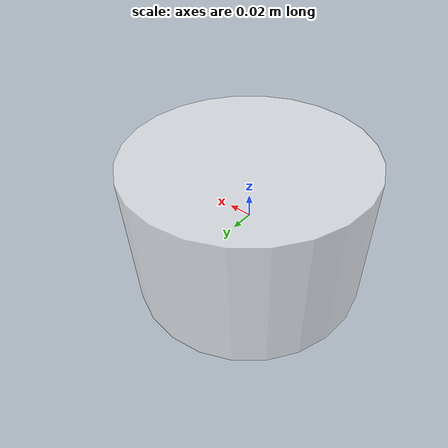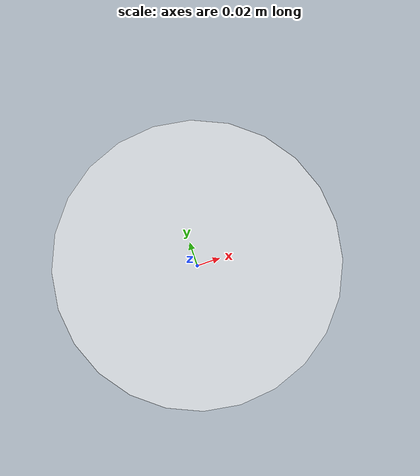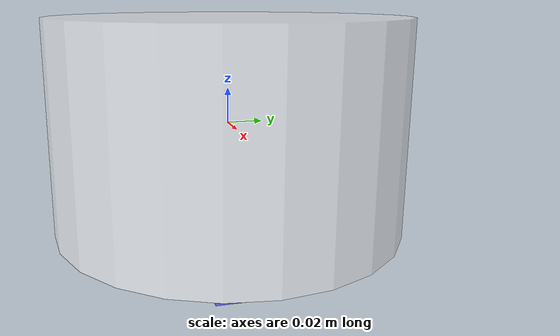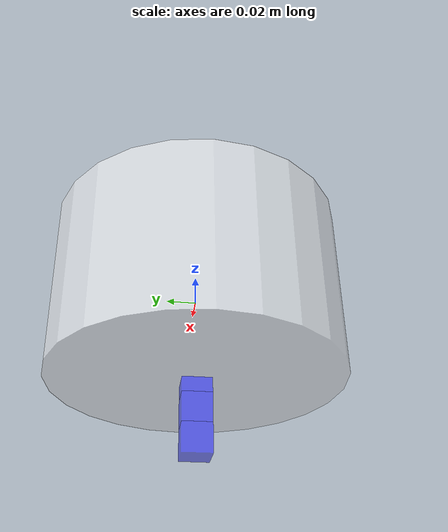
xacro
<?xml version="1.0"?>
<robot xmlns:xacro="http://www.ros.org/wiki/xacro" name="first_robot">
 <xacro:macro name="base_link" params="length radius">
     <!--机器人身体部分-->
     <link name="base_link">
     <!--机器人feature-->
         <visual>
          <!--沿自己几何中心的偏移和旋转量-->
          <origin xyz="0 0 0" rpy="0 0 0"/>
          <!--几何形状-->
          <geometry>
              <cylinder radius="${radius}" length="${length}"/>
          </geometry>
          <!--材质-->
          <material name="white">
             <color rgba="1 1 1 0.5"/>
          </material>
        </visual>
    </link>
 </xacro:macro>
    <!--Imu部件，传感器-->
    <xacro:macro name="imu_link" params="imu_name xyz">
     <link name="${imu_name}_link">
         <visual>
             <origin xyz="0 0 0" rpy="0 0 0"/>
             <geometry>
                 <box size="0.02 0.02 0.02"/>
             </geometry>
             <material name="blue">
                 <color rgba="0 0 1 0.5"/>
             </material>
         </visual>
     </link>
     <!--机器人关节部分-->
     <joint name="${imu_name}_joint" type="fixed">
         <parent link="base_link"/>
         <child link="${imu_name}_link"/>
         <origin xyz="${xyz}" rpy="0 0 0"/>
     </joint>

    </xacro:macro>

    <xacro:base_link length="0.12" radius="0.1"/>
    <xacro:imu_link imu_name="imu_up" xyz="0 0 0.02"/>
    <xacro:imu_link imu_name="down" xyz="0 0 -0.02"/>
    <xacro:imu_link imu_name="down2" xyz="0 0 -0.04"/>
    <xacro:imu_link imu_name="down3" xyz="0 0 -0.06"/>
    <xacro:imu_link imu_name="down4" xyz="0 0 -0.08"/>
    <xacro:imu_link imu_name="down5" xyz="0 0 -0.10"/>

</robot>
